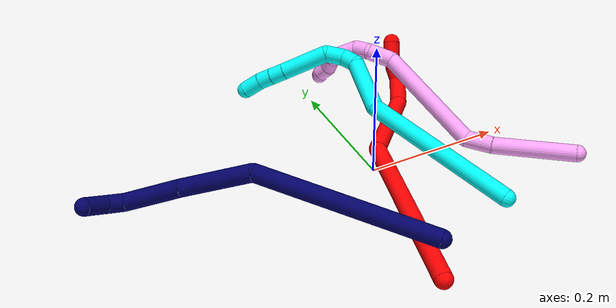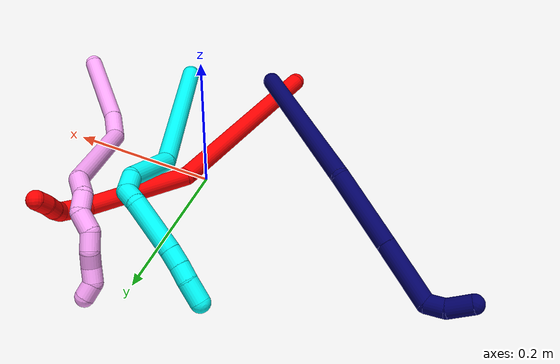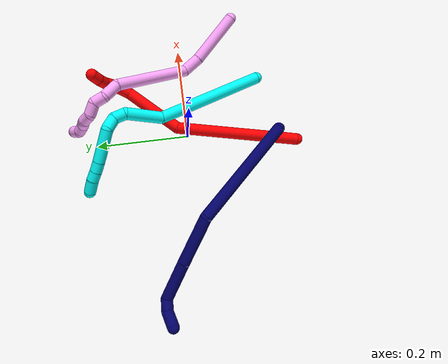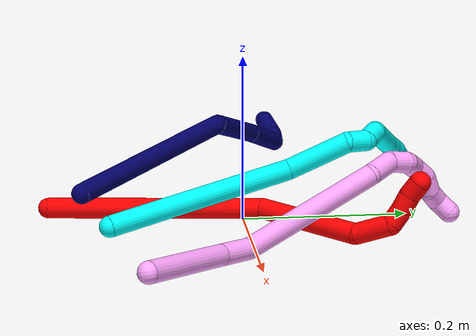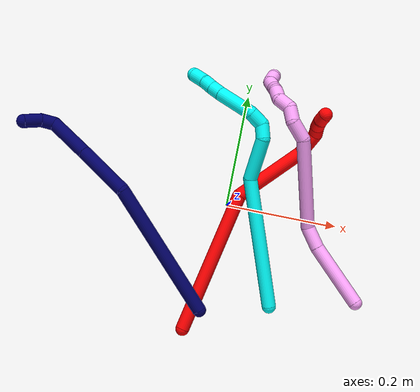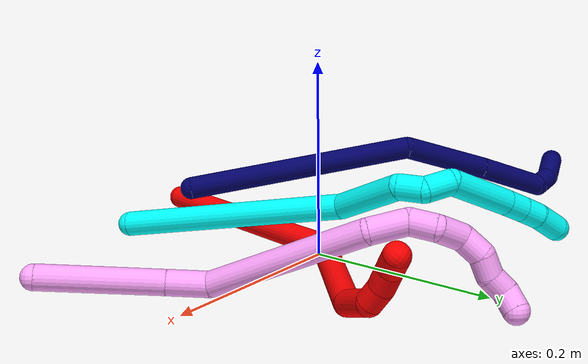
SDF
<sdf version="1.7">
 <world name="default">
  <model name="2">
   <static>0</static>
   <link name="2">
    <collision name="collision-cylinder-e_1_1_4">
     <pose>0.046557 0.091981 -0.079503 -2.28356 0.365711 -0.768346</pose>
     <geometry><cylinder><radius>0.0125</radius><length>0.260375</length></cylinder></geometry>
     <surface>
      <friction><ode><mu>1.16</mu><mu2>1.16</mu2><slip1>0</slip1><slip2>0</slip2></ode></friction>
      <contact><ode><kp>1e+06</kp><kd>1</kd><max_vel>0</max_vel><min_depth>0.001</min_depth></ode></contact>
     </surface>
    </collision>
    <visual name="visual-cylinder-e_1_1_4">
     <pose>0.046557 0.091981 -0.079503 -2.28356 0.365711 -0.768346</pose>
     <geometry><cylinder><radius>0.0125</radius><length>0.260375</length></cylinder></geometry>
     <material><ambient>1 0 0 1</ambient></material>
    </visual>
    <collision name="collision-cylinder-e_2_4_5">
     <pose>0.145352 0.222089 -0.177426 -2.02083 0.889639 -1.29933</pose>
     <geometry><cylinder><radius>0.0125</radius><length>0.134488</length></cylinder></geometry>
     <surface>
      <friction><ode><mu>1.16</mu><mu2>1.16</mu2><slip1>0</slip1><slip2>0</slip2></ode></friction>
      <contact><ode><kp>1e+06</kp><kd>1</kd><max_vel>0</max_vel><min_depth>0.001</min_depth></ode></contact>
     </surface>
    </collision>
    <visual name="visual-cylinder-e_2_4_5">
     <pose>0.145352 0.222089 -0.177426 -2.02083 0.889639 -1.29933</pose>
     <geometry><cylinder><radius>0.0125</radius><length>0.134488</length></cylinder></geometry>
     <material><ambient>1 0 0 1</ambient></material>
    </visual>
    <collision name="collision-cylinder-e_3_5_6">
     <pose>0.206717 0.280123 -0.200879 -1.81849 0.418287 -0.532276</pose>
     <geometry><cylinder><radius>0.0125</radius><length>0.044941</length></cylinder></geometry>
     <surface>
      <friction><ode><mu>1.16</mu><mu2>1.16</mu2><slip1>0</slip1><slip2>0</slip2></ode></friction>
      <contact><ode><kp>1e+06</kp><kd>1</kd><max_vel>0</max_vel><min_depth>0.001</min_depth></ode></contact>
     </surface>
    </collision>
    <visual name="visual-cylinder-e_3_5_6">
     <pose>0.206717 0.280123 -0.200879 -1.81849 0.418287 -0.532276</pose>
     <geometry><cylinder><radius>0.0125</radius><length>0.044941</length></cylinder></geometry>
     <material><ambient>1 0 0 1</ambient></material>
    </visual>
    <collision name="collision-cylinder-e_4_6_7">
     <pose>0.213217 0.309679 -0.205785 -1.55754 -0.265821 0.26236</pose>
     <geometry><cylinder><radius>0.0125</radius><length>0.020005</length></cylinder></geometry>
     <surface>
      <friction><ode><mu>1.16</mu><mu2>1.16</mu2><slip1>0</slip1><slip2>0</slip2></ode></friction>
      <contact><ode><kp>1e+06</kp><kd>1</kd><max_vel>0</max_vel><min_depth>0.001</min_depth></ode></contact>
     </surface>
    </collision>
    <visual name="visual-cylinder-e_4_6_7">
     <pose>0.213217 0.309679 -0.205785 -1.55754 -0.265821 0.26236</pose>
     <geometry><cylinder><radius>0.0125</radius><length>0.020005</length></cylinder></geometry>
     <material><ambient>1 0 0 1</ambient></material>
    </visual>
    <collision name="collision-cylinder-e_5_7_8">
     <pose>0.208462 0.328938 -0.203554 -1.35532 -0.213031 0.171675</pose>
     <geometry><cylinder><radius>0.0125</radius><length>0.020126</length></cylinder></geometry>
     <surface>
      <friction><ode><mu>1.16</mu><mu2>1.16</mu2><slip1>0</slip1><slip2>0</slip2></ode></friction>
      <contact><ode><kp>1e+06</kp><kd>1</kd><max_vel>0</max_vel><min_depth>0.001</min_depth></ode></contact>
     </surface>
    </collision>
    <visual name="visual-cylinder-e_5_7_8">
     <pose>0.208462 0.328938 -0.203554 -1.35532 -0.213031 0.171675</pose>
     <geometry><cylinder><radius>0.0125</radius><length>0.020126</length></cylinder></geometry>
     <material><ambient>1 0 0 1</ambient></material>
    </visual>
    <collision name="collision-cylinder-e_6_8_2">
     <pose>0.206489 0.348387 -0.199509 -1.37597 0.015394 -0.012653</pose>
     <geometry><cylinder><radius>0.0125</radius><length>0.020065</length></cylinder></geometry>
     <surface>
      <friction><ode><mu>1.16</mu><mu2>1.16</mu2><slip1>0</slip1><slip2>0</slip2></ode></friction>
      <contact><ode><kp>1e+06</kp><kd>1</kd><max_vel>0</max_vel><min_depth>0.001</min_depth></ode></contact>
     </surface>
    </collision>
    <visual name="visual-cylinder-e_6_8_2">
     <pose>0.206489 0.348387 -0.199509 -1.37597 0.015394 -0.012653</pose>
     <geometry><cylinder><radius>0.0125</radius><length>0.020065</length></cylinder></geometry>
     <material><ambient>1 0 0 1</ambient></material>
    </visual>
    <collision name="collision-sphere-2">
     <pose>0.206643 0.358229 -0.197567 0 -0 0</pose>
     <geometry><sphere><radius>0.0125</radius></sphere></geometry>
     <surface>
      <friction><ode><mu>1.16</mu><mu2>1.16</mu2><slip1>0</slip1><slip2>0</slip2></ode></friction>
      <contact><ode><kp>1e+06</kp><kd>1</kd><max_vel>0</max_vel><min_depth>0.001</min_depth></ode></contact>
     </surface>
    </collision>
    <visual name="visual-sphere-2">
     <pose>0.206643 0.358229 -0.197567 0 -0 0</pose>
     <geometry><sphere><radius>0.0125</radius></sphere></geometry>
     <material><ambient>1 0 0 1</ambient></material>
    </visual>
    <collision name="collision-sphere-4">
     <pose>0.093114 0.183962 -0.159007 0 -0 0</pose>
     <geometry><sphere><radius>0.0125</radius></sphere></geometry>
     <surface>
      <friction><ode><mu>1.16</mu><mu2>1.16</mu2><slip1>0</slip1><slip2>0</slip2></ode></friction>
      <contact><ode><kp>1e+06</kp><kd>1</kd><max_vel>0</max_vel><min_depth>0.001</min_depth></ode></contact>
     </surface>
    </collision>
    <visual name="visual-sphere-4">
     <pose>0.093114 0.183962 -0.159007 0 -0 0</pose>
     <geometry><sphere><radius>0.0125</radius></sphere></geometry>
     <material><ambient>1 0 0 1</ambient></material>
    </visual>
    <collision name="collision-sphere-1">
     <geometry><sphere><radius>0.0125</radius></sphere></geometry>
     <surface>
      <friction><ode><mu>1.16</mu><mu2>1.16</mu2><slip1>0</slip1><slip2>0</slip2></ode></friction>
      <contact><ode><kp>1e+06</kp><kd>1</kd><max_vel>0</max_vel><min_depth>0.001</min_depth></ode></contact>
     </surface>
    </collision>
    <visual name="visual-sphere-1">
     <geometry><sphere><radius>0.0125</radius></sphere></geometry>
     <material><ambient>1 0 0 1</ambient></material>
    </visual>
    <collision name="collision-sphere-8">
     <pose>0.206334 0.338546 -0.201451 0 -0 0</pose>
     <geometry><sphere><radius>0.0125</radius></sphere></geometry>
     <surface>
      <friction><ode><mu>1.16</mu><mu2>1.16</mu2><slip1>0</slip1><slip2>0</slip2></ode></friction>
      <contact><ode><kp>1e+06</kp><kd>1</kd><max_vel>0</max_vel><min_depth>0.001</min_depth></ode></contact>
     </surface>
    </collision>
    <visual name="visual-sphere-8">
     <pose>0.206334 0.338546 -0.201451 0 -0 0</pose>
     <geometry><sphere><radius>0.0125</radius></sphere></geometry>
     <material><ambient>1 0 0 1</ambient></material>
    </visual>
    <collision name="collision-sphere-5">
     <pose>0.19759 0.260216 -0.195845 0 -0 0</pose>
     <geometry><sphere><radius>0.0125</radius></sphere></geometry>
     <surface>
      <friction><ode><mu>1.16</mu><mu2>1.16</mu2><slip1>0</slip1><slip2>0</slip2></ode></friction>
      <contact><ode><kp>1e+06</kp><kd>1</kd><max_vel>0</max_vel><min_depth>0.001</min_depth></ode></contact>
     </surface>
    </collision>
    <visual name="visual-sphere-5">
     <pose>0.19759 0.260216 -0.195845 0 -0 0</pose>
     <geometry><sphere><radius>0.0125</radius></sphere></geometry>
     <material><ambient>1 0 0 1</ambient></material>
    </visual>
    <collision name="collision-sphere-6">
     <pose>0.215845 0.300029 -0.205913 0 -0 0</pose>
     <geometry><sphere><radius>0.0125</radius></sphere></geometry>
     <surface>
      <friction><ode><mu>1.16</mu><mu2>1.16</mu2><slip1>0</slip1><slip2>0</slip2></ode></friction>
      <contact><ode><kp>1e+06</kp><kd>1</kd><max_vel>0</max_vel><min_depth>0.001</min_depth></ode></contact>
     </surface>
    </collision>
    <visual name="visual-sphere-6">
     <pose>0.215845 0.300029 -0.205913 0 -0 0</pose>
     <geometry><sphere><radius>0.0125</radius></sphere></geometry>
     <material><ambient>1 0 0 1</ambient></material>
    </visual>
    <collision name="collision-sphere-7">
     <pose>0.210589 0.31933 -0.205657 0 -0 0</pose>
     <geometry><sphere><radius>0.0125</radius></sphere></geometry>
     <surface>
      <friction><ode><mu>1.16</mu><mu2>1.16</mu2><slip1>0</slip1><slip2>0</slip2></ode></friction>
      <contact><ode><kp>1e+06</kp><kd>1</kd><max_vel>0</max_vel><min_depth>0.001</min_depth></ode></contact>
     </surface>
    </collision>
    <visual name="visual-sphere-7">
     <pose>0.210589 0.31933 -0.205657 0 -0 0</pose>
     <geometry><sphere><radius>0.0125</radius></sphere></geometry>
     <material><ambient>1 0 0 1</ambient></material>
    </visual>
    <inertial>
     <pose>0.107129 0.172425 -0.131613 0 -0 0</pose>
     <mass>0.5</mass>
     <inertia>
      <ixx>-3.4e-05</ixx>
      <ixy>0</ixy>
      <ixz>0</ixz>
      <iyy>-0.001365</iyy>
      <iyz>0</iyz>
      <izz>-0.001887</izz>
     </inertia>
    </inertial>
   </link>
   <pose>-0.035132 -0.234064 0.011494 0.907414 0.403834 0.205644</pose>
  </model>
  <model name="3">
   <static>0</static>
   <link name="3">
    <collision name="collision-cylinder-e_1_1_4">
     <pose>0.023917 0.066223 0.091809 -0.624882 0.208216 -0.067477</pose>
     <geometry><cylinder><radius>0.0125</radius><length>0.231399</length></cylinder></geometry>
     <surface>
      <friction><ode><mu>1.16</mu><mu2>1.16</mu2><slip1>0</slip1><slip2>0</slip2></ode></friction>
      <contact><ode><kp>1e+06</kp><kd>1</kd><max_vel>0</max_vel><min_depth>0.001</min_depth></ode></contact>
     </surface>
    </collision>
    <visual name="visual-cylinder-e_1_1_4">
     <pose>0.023917 0.066223 0.091809 -0.624882 0.208216 -0.067477</pose>
     <geometry><cylinder><radius>0.0125</radius><length>0.231399</length></cylinder></geometry>
     <material><ambient>0.003922 1 0.996078 1</ambient></material>
    </visual>
    <collision name="collision-cylinder-e_2_4_5">
     <pose>0.071957 0.155408 0.203581 -0.85519 0.670352 -0.31484</pose>
     <geometry><cylinder><radius>0.0125</radius><length>0.077659</length></cylinder></geometry>
     <surface>
      <friction><ode><mu>1.16</mu><mu2>1.16</mu2><slip1>0</slip1><slip2>0</slip2></ode></friction>
      <contact><ode><kp>1e+06</kp><kd>1</kd><max_vel>0</max_vel><min_depth>0.001</min_depth></ode></contact>
     </surface>
    </collision>
    <visual name="visual-cylinder-e_2_4_5">
     <pose>0.071957 0.155408 0.203581 -0.85519 0.670352 -0.31484</pose>
     <geometry><cylinder><radius>0.0125</radius><length>0.077659</length></cylinder></geometry>
     <material><ambient>0.003922 1 0.996078 1</ambient></material>
    </visual>
    <collision name="collision-cylinder-e_3_5_6">
     <pose>0.097144 0.18712 0.232317 -0.783979 0.085647 -0.035423</pose>
     <geometry><cylinder><radius>0.0125</radius><length>0.024872</length></cylinder></geometry>
     <surface>
      <friction><ode><mu>1.16</mu><mu2>1.16</mu2><slip1>0</slip1><slip2>0</slip2></ode></friction>
      <contact><ode><kp>1e+06</kp><kd>1</kd><max_vel>0</max_vel><min_depth>0.001</min_depth></ode></contact>
     </surface>
    </collision>
    <visual name="visual-cylinder-e_3_5_6">
     <pose>0.097144 0.18712 0.232317 -0.783979 0.085647 -0.035423</pose>
     <geometry><cylinder><radius>0.0125</radius><length>0.024872</length></cylinder></geometry>
     <material><ambient>0.003922 1 0.996078 1</ambient></material>
    </visual>
    <collision name="collision-cylinder-e_4_6_7">
     <pose>0.096903 0.196833 0.25472 -0.070551 -0.095242 0.003364</pose>
     <geometry><cylinder><radius>0.0125</radius><length>0.02745</length></cylinder></geometry>
     <surface>
      <friction><ode><mu>1.16</mu><mu2>1.16</mu2><slip1>0</slip1><slip2>0</slip2></ode></friction>
      <contact><ode><kp>1e+06</kp><kd>1</kd><max_vel>0</max_vel><min_depth>0.001</min_depth></ode></contact>
     </surface>
    </collision>
    <visual name="visual-cylinder-e_4_6_7">
     <pose>0.096903 0.196833 0.25472 -0.070551 -0.095242 0.003364</pose>
     <geometry><cylinder><radius>0.0125</radius><length>0.02745</length></cylinder></geometry>
     <material><ambient>0.003922 1 0.996078 1</ambient></material>
    </visual>
    <collision name="collision-cylinder-e_5_7_8">
     <pose>0.073261 0.204582 0.293759 -0.260968 -0.704068 0.096336</pose>
     <geometry><cylinder><radius>0.0125</radius><length>0.069011</length></cylinder></geometry>
     <surface>
      <friction><ode><mu>1.16</mu><mu2>1.16</mu2><slip1>0</slip1><slip2>0</slip2></ode></friction>
      <contact><ode><kp>1e+06</kp><kd>1</kd><max_vel>0</max_vel><min_depth>0.001</min_depth></ode></contact>
     </surface>
    </collision>
    <visual name="visual-cylinder-e_5_7_8">
     <pose>0.073261 0.204582 0.293759 -0.260968 -0.704068 0.096336</pose>
     <geometry><cylinder><radius>0.0125</radius><length>0.069011</length></cylinder></geometry>
     <material><ambient>0.003922 1 0.996078 1</ambient></material>
    </visual>
    <collision name="collision-cylinder-e_6_8_9">
     <pose>0.044208 0.214103 0.326886 -0.340615 -0.687035 0.122875</pose>
     <geometry><cylinder><radius>0.0125</radius><length>0.021181</length></cylinder></geometry>
     <surface>
      <friction><ode><mu>1.16</mu><mu2>1.16</mu2><slip1>0</slip1><slip2>0</slip2></ode></friction>
      <contact><ode><kp>1e+06</kp><kd>1</kd><max_vel>0</max_vel><min_depth>0.001</min_depth></ode></contact>
     </surface>
    </collision>
    <visual name="visual-cylinder-e_6_8_9">
     <pose>0.044208 0.214103 0.326886 -0.340615 -0.687035 0.122875</pose>
     <geometry><cylinder><radius>0.0125</radius><length>0.021181</length></cylinder></geometry>
     <material><ambient>0.003922 1 0.996078 1</ambient></material>
    </visual>
    <collision name="collision-cylinder-e_7_9_10">
     <pose>0.031207 0.220047 0.34185 -0.416887 -0.670414 0.147098</pose>
     <geometry><cylinder><radius>0.0125</radius><length>0.020229</length></cylinder></geometry>
     <surface>
      <friction><ode><mu>1.16</mu><mu2>1.16</mu2><slip1>0</slip1><slip2>0</slip2></ode></friction>
      <contact><ode><kp>1e+06</kp><kd>1</kd><max_vel>0</max_vel><min_depth>0.001</min_depth></ode></contact>
     </surface>
    </collision>
    <visual name="visual-cylinder-e_7_9_10">
     <pose>0.031207 0.220047 0.34185 -0.416887 -0.670414 0.147098</pose>
     <geometry><cylinder><radius>0.0125</radius><length>0.020229</length></cylinder></geometry>
     <material><ambient>0.003922 1 0.996078 1</ambient></material>
    </visual>
    <collision name="collision-cylinder-e_8_10_2">
     <pose>0.014531 0.227186 0.357779 -0.424994 -0.828644 0.189202</pose>
     <geometry><cylinder><radius>0.0125</radius><length>0.028198</length></cylinder></geometry>
     <surface>
      <friction><ode><mu>1.16</mu><mu2>1.16</mu2><slip1>0</slip1><slip2>0</slip2></ode></friction>
      <contact><ode><kp>1e+06</kp><kd>1</kd><max_vel>0</max_vel><min_depth>0.001</min_depth></ode></contact>
     </surface>
    </collision>
    <visual name="visual-cylinder-e_8_10_2">
     <pose>0.014531 0.227186 0.357779 -0.424994 -0.828644 0.189202</pose>
     <geometry><cylinder><radius>0.0125</radius><length>0.028198</length></cylinder></geometry>
     <material><ambient>0.003922 1 0.996078 1</ambient></material>
    </visual>
    <collision name="collision-sphere-2">
     <pose>0.00414 0.231115 0.36646 0 -0 0</pose>
     <geometry><sphere><radius>0.0125</radius></sphere></geometry>
     <surface>
      <friction><ode><mu>1.16</mu><mu2>1.16</mu2><slip1>0</slip1><slip2>0</slip2></ode></friction>
      <contact><ode><kp>1e+06</kp><kd>1</kd><max_vel>0</max_vel><min_depth>0.001</min_depth></ode></contact>
     </surface>
    </collision>
    <visual name="visual-sphere-2">
     <pose>0.00414 0.231115 0.36646 0 -0 0</pose>
     <geometry><sphere><radius>0.0125</radius></sphere></geometry>
     <material><ambient>0.003922 1 0.996078 1</ambient></material>
    </visual>
    <collision name="collision-sphere-10">
     <pose>0.024922 0.223256 0.349097 0 -0 0</pose>
     <geometry><sphere><radius>0.0125</radius></sphere></geometry>
     <surface>
      <friction><ode><mu>1.16</mu><mu2>1.16</mu2><slip1>0</slip1><slip2>0</slip2></ode></friction>
      <contact><ode><kp>1e+06</kp><kd>1</kd><max_vel>0</max_vel><min_depth>0.001</min_depth></ode></contact>
     </surface>
    </collision>
    <visual name="visual-sphere-10">
     <pose>0.024922 0.223256 0.349097 0 -0 0</pose>
     <geometry><sphere><radius>0.0125</radius></sphere></geometry>
     <material><ambient>0.003922 1 0.996078 1</ambient></material>
    </visual>
    <collision name="collision-sphere-9">
     <pose>0.037491 0.216838 0.334603 0 -0 0</pose>
     <geometry><sphere><radius>0.0125</radius></sphere></geometry>
     <surface>
      <friction><ode><mu>1.16</mu><mu2>1.16</mu2><slip1>0</slip1><slip2>0</slip2></ode></friction>
      <contact><ode><kp>1e+06</kp><kd>1</kd><max_vel>0</max_vel><min_depth>0.001</min_depth></ode></contact>
     </surface>
    </collision>
    <visual name="visual-sphere-9">
     <pose>0.037491 0.216838 0.334603 0 -0 0</pose>
     <geometry><sphere><radius>0.0125</radius></sphere></geometry>
     <material><ambient>0.003922 1 0.996078 1</ambient></material>
    </visual>
    <collision name="collision-sphere-4">
     <pose>0.047834 0.132445 0.183619 0 -0 0</pose>
     <geometry><sphere><radius>0.0125</radius></sphere></geometry>
     <surface>
      <friction><ode><mu>1.16</mu><mu2>1.16</mu2><slip1>0</slip1><slip2>0</slip2></ode></friction>
      <contact><ode><kp>1e+06</kp><kd>1</kd><max_vel>0</max_vel><min_depth>0.001</min_depth></ode></contact>
     </surface>
    </collision>
    <visual name="visual-sphere-4">
     <pose>0.047834 0.132445 0.183619 0 -0 0</pose>
     <geometry><sphere><radius>0.0125</radius></sphere></geometry>
     <material><ambient>0.003922 1 0.996078 1</ambient></material>
    </visual>
    <collision name="collision-sphere-1">
     <geometry><sphere><radius>0.0125</radius></sphere></geometry>
     <surface>
      <friction><ode><mu>1.16</mu><mu2>1.16</mu2><slip1>0</slip1><slip2>0</slip2></ode></friction>
      <contact><ode><kp>1e+06</kp><kd>1</kd><max_vel>0</max_vel><min_depth>0.001</min_depth></ode></contact>
     </surface>
    </collision>
    <visual name="visual-sphere-1">
     <geometry><sphere><radius>0.0125</radius></sphere></geometry>
     <material><ambient>0.003922 1 0.996078 1</ambient></material>
    </visual>
    <collision name="collision-sphere-8">
     <pose>0.050925 0.211368 0.319169 0 -0 0</pose>
     <geometry><sphere><radius>0.0125</radius></sphere></geometry>
     <surface>
      <friction><ode><mu>1.16</mu><mu2>1.16</mu2><slip1>0</slip1><slip2>0</slip2></ode></friction>
      <contact><ode><kp>1e+06</kp><kd>1</kd><max_vel>0</max_vel><min_depth>0.001</min_depth></ode></contact>
     </surface>
    </collision>
    <visual name="visual-sphere-8">
     <pose>0.050925 0.211368 0.319169 0 -0 0</pose>
     <geometry><sphere><radius>0.0125</radius></sphere></geometry>
     <material><ambient>0.003922 1 0.996078 1</ambient></material>
    </visual>
    <collision name="collision-sphere-5">
     <pose>0.09608 0.178371 0.223543 0 -0 0</pose>
     <geometry><sphere><radius>0.0125</radius></sphere></geometry>
     <surface>
      <friction><ode><mu>1.16</mu><mu2>1.16</mu2><slip1>0</slip1><slip2>0</slip2></ode></friction>
      <contact><ode><kp>1e+06</kp><kd>1</kd><max_vel>0</max_vel><min_depth>0.001</min_depth></ode></contact>
     </surface>
    </collision>
    <visual name="visual-sphere-5">
     <pose>0.09608 0.178371 0.223543 0 -0 0</pose>
     <geometry><sphere><radius>0.0125</radius></sphere></geometry>
     <material><ambient>0.003922 1 0.996078 1</ambient></material>
    </visual>
    <collision name="collision-sphere-6">
     <pose>0.098208 0.195869 0.241091 0 -0 0</pose>
     <geometry><sphere><radius>0.0125</radius></sphere></geometry>
     <surface>
      <friction><ode><mu>1.16</mu><mu2>1.16</mu2><slip1>0</slip1><slip2>0</slip2></ode></friction>
      <contact><ode><kp>1e+06</kp><kd>1</kd><max_vel>0</max_vel><min_depth>0.001</min_depth></ode></contact>
     </surface>
    </collision>
    <visual name="visual-sphere-6">
     <pose>0.098208 0.195869 0.241091 0 -0 0</pose>
     <geometry><sphere><radius>0.0125</radius></sphere></geometry>
     <material><ambient>0.003922 1 0.996078 1</ambient></material>
    </visual>
    <collision name="collision-sphere-7">
     <pose>0.095598 0.197796 0.268349 0 -0 0</pose>
     <geometry><sphere><radius>0.0125</radius></sphere></geometry>
     <surface>
      <friction><ode><mu>1.16</mu><mu2>1.16</mu2><slip1>0</slip1><slip2>0</slip2></ode></friction>
      <contact><ode><kp>1e+06</kp><kd>1</kd><max_vel>0</max_vel><min_depth>0.001</min_depth></ode></contact>
     </surface>
    </collision>
    <visual name="visual-sphere-7">
     <pose>0.095598 0.197796 0.268349 0 -0 0</pose>
     <geometry><sphere><radius>0.0125</radius></sphere></geometry>
     <material><ambient>0.003922 1 0.996078 1</ambient></material>
    </visual>
    <inertial>
     <pose>0.046464 0.133922 0.188051 0 -0 0</pose>
     <mass>0.5</mass>
     <inertia>
      <ixx>0.001005</ixx>
      <ixy>0</ixy>
      <ixz>0</ixz>
      <iyy>0.000865</iyy>
      <iyz>0</iyz>
      <izz>-0.00082</izz>
     </inertia>
    </inertial>
   </link>
   <pose>0.107864 -0.163025 0.029554 -0.961775 -1.01994 0.474908</pose>
  </model>
  <model name="4">
   <static>0</static>
   <link name="4">
    <collision name="collision-cylinder-e_1_1_4">
     <pose>-0.054015 0.023887 -0.006722 -1.84512 -1.14016 1.40479</pose>
     <geometry><cylinder><radius>0.0125</radius><length>0.118885</length></cylinder></geometry>
     <surface>
      <friction><ode><mu>1.16</mu><mu2>1.16</mu2><slip1>0</slip1><slip2>0</slip2></ode></friction>
      <contact><ode><kp>1e+06</kp><kd>1</kd><max_vel>0</max_vel><min_depth>0.001</min_depth></ode></contact>
     </surface>
    </collision>
    <visual name="visual-cylinder-e_1_1_4">
     <pose>-0.054015 0.023887 -0.006722 -1.84512 -1.14016 1.40479</pose>
     <geometry><cylinder><radius>0.0125</radius><length>0.118885</length></cylinder></geometry>
     <material><ambient>1 0.65098 0.996078 1</ambient></material>
    </visual>
    <collision name="collision-cylinder-e_2_4_5">
     <pose>-0.124976 0.059071 -0.015136 -1.71944 -0.977642 1.1063</pose>
     <geometry><cylinder><radius>0.0125</radius><length>0.040872</length></cylinder></geometry>
     <surface>
      <friction><ode><mu>1.16</mu><mu2>1.16</mu2><slip1>0</slip1><slip2>0</slip2></ode></friction>
      <contact><ode><kp>1e+06</kp><kd>1</kd><max_vel>0</max_vel><min_depth>0.001</min_depth></ode></contact>
     </surface>
    </collision>
    <visual name="visual-cylinder-e_2_4_5">
     <pose>-0.124976 0.059071 -0.015136 -1.71944 -0.977642 1.1063</pose>
     <geometry><cylinder><radius>0.0125</radius><length>0.040872</length></cylinder></geometry>
     <material><ambient>1 0.65098 0.996078 1</ambient></material>
    </visual>
    <collision name="collision-cylinder-e_3_5_6">
     <pose>-0.185975 0.136481 0.009953 -1.18592 -0.553255 0.378053</pose>
     <geometry><cylinder><radius>0.0125</radius><length>0.167676</length></cylinder></geometry>
     <surface>
      <friction><ode><mu>1.16</mu><mu2>1.16</mu2><slip1>0</slip1><slip2>0</slip2></ode></friction>
      <contact><ode><kp>1e+06</kp><kd>1</kd><max_vel>0</max_vel><min_depth>0.001</min_depth></ode></contact>
     </surface>
    </collision>
    <visual name="visual-cylinder-e_3_5_6">
     <pose>-0.185975 0.136481 0.009953 -1.18592 -0.553255 0.378053</pose>
     <geometry><cylinder><radius>0.0125</radius><length>0.167676</length></cylinder></geometry>
     <material><ambient>1 0.65098 0.996078 1</ambient></material>
    </visual>
    <collision name="collision-cylinder-e_4_6_7">
     <pose>-0.245867 0.211278 0.040241 -1.18701 -1.03676 0.734721</pose>
     <geometry><cylinder><radius>0.0125</radius><length>0.036801</length></cylinder></geometry>
     <surface>
      <friction><ode><mu>1.16</mu><mu2>1.16</mu2><slip1>0</slip1><slip2>0</slip2></ode></friction>
      <contact><ode><kp>1e+06</kp><kd>1</kd><max_vel>0</max_vel><min_depth>0.001</min_depth></ode></contact>
     </surface>
    </collision>
    <visual name="visual-cylinder-e_4_6_7">
     <pose>-0.245867 0.211278 0.040241 -1.18701 -1.03676 0.734721</pose>
     <geometry><cylinder><radius>0.0125</radius><length>0.036801</length></cylinder></geometry>
     <material><ambient>1 0.65098 0.996078 1</ambient></material>
    </visual>
    <collision name="collision-cylinder-e_5_7_8">
     <pose>-0.27031 0.228743 0.040735 -1.90129 -0.747493 1.0044</pose>
     <geometry><cylinder><radius>0.0125</radius><length>0.025316</length></cylinder></geometry>
     <surface>
      <friction><ode><mu>1.16</mu><mu2>1.16</mu2><slip1>0</slip1><slip2>0</slip2></ode></friction>
      <contact><ode><kp>1e+06</kp><kd>1</kd><max_vel>0</max_vel><min_depth>0.001</min_depth></ode></contact>
     </surface>
    </collision>
    <visual name="visual-cylinder-e_5_7_8">
     <pose>-0.27031 0.228743 0.040735 -1.90129 -0.747493 1.0044</pose>
     <geometry><cylinder><radius>0.0125</radius><length>0.025316</length></cylinder></geometry>
     <material><ambient>1 0.65098 0.996078 1</ambient></material>
    </visual>
    <collision name="collision-cylinder-e_6_8_9">
     <pose>-0.29127 0.239008 0.032432 -2.86815 -1.15235 2.72425</pose>
     <geometry><cylinder><radius>0.0125</radius><length>0.027044</length></cylinder></geometry>
     <surface>
      <friction><ode><mu>1.16</mu><mu2>1.16</mu2><slip1>0</slip1><slip2>0</slip2></ode></friction>
      <contact><ode><kp>1e+06</kp><kd>1</kd><max_vel>0</max_vel><min_depth>0.001</min_depth></ode></contact>
     </surface>
    </collision>
    <visual name="visual-cylinder-e_6_8_9">
     <pose>-0.29127 0.239008 0.032432 -2.86815 -1.15235 2.72425</pose>
     <geometry><cylinder><radius>0.0125</radius><length>0.027044</length></cylinder></geometry>
     <material><ambient>1 0.65098 0.996078 1</ambient></material>
    </visual>
    <collision name="collision-cylinder-e_7_9_10">
     <pose>-0.310185 0.245521 0.019073 -2.58428 -0.603962 1.65579</pose>
     <geometry><cylinder><radius>0.0125</radius><length>0.023102</length></cylinder></geometry>
     <surface>
      <friction><ode><mu>1.16</mu><mu2>1.16</mu2><slip1>0</slip1><slip2>0</slip2></ode></friction>
      <contact><ode><kp>1e+06</kp><kd>1</kd><max_vel>0</max_vel><min_depth>0.001</min_depth></ode></contact>
     </surface>
    </collision>
    <visual name="visual-cylinder-e_7_9_10">
     <pose>-0.310185 0.245521 0.019073 -2.58428 -0.603962 1.65579</pose>
     <geometry><cylinder><radius>0.0125</radius><length>0.023102</length></cylinder></geometry>
     <material><ambient>1 0.65098 0.996078 1</ambient></material>
    </visual>
    <collision name="collision-cylinder-e_8_10_11">
     <pose>-0.319938 0.251584 0.001519 -3.03289 -0.322925 2.49688</pose>
     <geometry><cylinder><radius>0.0125</radius><length>0.020123</length></cylinder></geometry>
     <surface>
      <friction><ode><mu>1.16</mu><mu2>1.16</mu2><slip1>0</slip1><slip2>0</slip2></ode></friction>
      <contact><ode><kp>1e+06</kp><kd>1</kd><max_vel>0</max_vel><min_depth>0.001</min_depth></ode></contact>
     </surface>
    </collision>
    <visual name="visual-cylinder-e_8_10_11">
     <pose>-0.319938 0.251584 0.001519 -3.03289 -0.322925 2.49688</pose>
     <geometry><cylinder><radius>0.0125</radius><length>0.020123</length></cylinder></geometry>
     <material><ambient>1 0.65098 0.996078 1</ambient></material>
    </visual>
    <collision name="collision-cylinder-e_9_11_12">
     <pose>-0.329365 0.255454 -0.015297 -2.7726 -0.670549 2.15815</pose>
     <geometry><cylinder><radius>0.0125</radius><length>0.020063</length></cylinder></geometry>
     <surface>
      <friction><ode><mu>1.16</mu><mu2>1.16</mu2><slip1>0</slip1><slip2>0</slip2></ode></friction>
      <contact><ode><kp>1e+06</kp><kd>1</kd><max_vel>0</max_vel><min_depth>0.001</min_depth></ode></contact>
     </surface>
    </collision>
    <visual name="visual-cylinder-e_9_11_12">
     <pose>-0.329365 0.255454 -0.015297 -2.7726 -0.670549 2.15815</pose>
     <geometry><cylinder><radius>0.0125</radius><length>0.020063</length></cylinder></geometry>
     <material><ambient>1 0.65098 0.996078 1</ambient></material>
    </visual>
    <collision name="collision-cylinder-e_10_12_2">
     <pose>-0.33605 0.264627 -0.030426 -2.45913 -0.044838 0.126115</pose>
     <geometry><cylinder><radius>0.0125</radius><length>0.020117</length></cylinder></geometry>
     <surface>
      <friction><ode><mu>1.16</mu><mu2>1.16</mu2><slip1>0</slip1><slip2>0</slip2></ode></friction>
      <contact><ode><kp>1e+06</kp><kd>1</kd><max_vel>0</max_vel><min_depth>0.001</min_depth></ode></contact>
     </surface>
    </collision>
    <visual name="visual-cylinder-e_10_12_2">
     <pose>-0.33605 0.264627 -0.030426 -2.45913 -0.044838 0.126115</pose>
     <geometry><cylinder><radius>0.0125</radius><length>0.020117</length></cylinder></geometry>
     <material><ambient>1 0.65098 0.996078 1</ambient></material>
    </visual>
    <collision name="collision-sphere-2">
     <pose>-0.336501 0.270964 -0.038223 0 -0 0</pose>
     <geometry><sphere><radius>0.0125</radius></sphere></geometry>
     <surface>
      <friction><ode><mu>1.16</mu><mu2>1.16</mu2><slip1>0</slip1><slip2>0</slip2></ode></friction>
      <contact><ode><kp>1e+06</kp><kd>1</kd><max_vel>0</max_vel><min_depth>0.001</min_depth></ode></contact>
     </surface>
    </collision>
    <visual name="visual-sphere-2">
     <pose>-0.336501 0.270964 -0.038223 0 -0 0</pose>
     <geometry><sphere><radius>0.0125</radius></sphere></geometry>
     <material><ambient>1 0.65098 0.996078 1</ambient></material>
    </visual>
    <collision name="collision-sphere-12">
     <pose>-0.335599 0.258289 -0.022628 0 -0 0</pose>
     <geometry><sphere><radius>0.0125</radius></sphere></geometry>
     <surface>
      <friction><ode><mu>1.16</mu><mu2>1.16</mu2><slip1>0</slip1><slip2>0</slip2></ode></friction>
      <contact><ode><kp>1e+06</kp><kd>1</kd><max_vel>0</max_vel><min_depth>0.001</min_depth></ode></contact>
     </surface>
    </collision>
    <visual name="visual-sphere-12">
     <pose>-0.335599 0.258289 -0.022628 0 -0 0</pose>
     <geometry><sphere><radius>0.0125</radius></sphere></geometry>
     <material><ambient>1 0.65098 0.996078 1</ambient></material>
    </visual>
    <collision name="collision-sphere-11">
     <pose>-0.323131 0.25262 -0.007967 0 -0 0</pose>
     <geometry><sphere><radius>0.0125</radius></sphere></geometry>
     <surface>
      <friction><ode><mu>1.16</mu><mu2>1.16</mu2><slip1>0</slip1><slip2>0</slip2></ode></friction>
      <contact><ode><kp>1e+06</kp><kd>1</kd><max_vel>0</max_vel><min_depth>0.001</min_depth></ode></contact>
     </surface>
    </collision>
    <visual name="visual-sphere-11">
     <pose>-0.323131 0.25262 -0.007967 0 -0 0</pose>
     <geometry><sphere><radius>0.0125</radius></sphere></geometry>
     <material><ambient>1 0.65098 0.996078 1</ambient></material>
    </visual>
    <collision name="collision-sphere-10">
     <pose>-0.316745 0.250549 0.011004 0 -0 0</pose>
     <geometry><sphere><radius>0.0125</radius></sphere></geometry>
     <surface>
      <friction><ode><mu>1.16</mu><mu2>1.16</mu2><slip1>0</slip1><slip2>0</slip2></ode></friction>
      <contact><ode><kp>1e+06</kp><kd>1</kd><max_vel>0</max_vel><min_depth>0.001</min_depth></ode></contact>
     </surface>
    </collision>
    <visual name="visual-sphere-10">
     <pose>-0.316745 0.250549 0.011004 0 -0 0</pose>
     <geometry><sphere><radius>0.0125</radius></sphere></geometry>
     <material><ambient>1 0.65098 0.996078 1</ambient></material>
    </visual>
    <collision name="collision-sphere-9">
     <pose>-0.303625 0.240492 0.027142 0 -0 0</pose>
     <geometry><sphere><radius>0.0125</radius></sphere></geometry>
     <surface>
      <friction><ode><mu>1.16</mu><mu2>1.16</mu2><slip1>0</slip1><slip2>0</slip2></ode></friction>
      <contact><ode><kp>1e+06</kp><kd>1</kd><max_vel>0</max_vel><min_depth>0.001</min_depth></ode></contact>
     </surface>
    </collision>
    <visual name="visual-sphere-9">
     <pose>-0.303625 0.240492 0.027142 0 -0 0</pose>
     <geometry><sphere><radius>0.0125</radius></sphere></geometry>
     <material><ambient>1 0.65098 0.996078 1</ambient></material>
    </visual>
    <collision name="collision-sphere-4">
     <pose>-0.108031 0.047773 -0.013444 0 -0 0</pose>
     <geometry><sphere><radius>0.0125</radius></sphere></geometry>
     <surface>
      <friction><ode><mu>1.16</mu><mu2>1.16</mu2><slip1>0</slip1><slip2>0</slip2></ode></friction>
      <contact><ode><kp>1e+06</kp><kd>1</kd><max_vel>0</max_vel><min_depth>0.001</min_depth></ode></contact>
     </surface>
    </collision>
    <visual name="visual-sphere-4">
     <pose>-0.108031 0.047773 -0.013444 0 -0 0</pose>
     <geometry><sphere><radius>0.0125</radius></sphere></geometry>
     <material><ambient>1 0.65098 0.996078 1</ambient></material>
    </visual>
    <collision name="collision-sphere-1">
     <geometry><sphere><radius>0.0125</radius></sphere></geometry>
     <surface>
      <friction><ode><mu>1.16</mu><mu2>1.16</mu2><slip1>0</slip1><slip2>0</slip2></ode></friction>
      <contact><ode><kp>1e+06</kp><kd>1</kd><max_vel>0</max_vel><min_depth>0.001</min_depth></ode></contact>
     </surface>
    </collision>
    <visual name="visual-sphere-1">
     <geometry><sphere><radius>0.0125</radius></sphere></geometry>
     <material><ambient>1 0.65098 0.996078 1</ambient></material>
    </visual>
    <collision name="collision-sphere-8">
     <pose>-0.278915 0.237524 0.037723 0 -0 0</pose>
     <geometry><sphere><radius>0.0125</radius></sphere></geometry>
     <surface>
      <friction><ode><mu>1.16</mu><mu2>1.16</mu2><slip1>0</slip1><slip2>0</slip2></ode></friction>
      <contact><ode><kp>1e+06</kp><kd>1</kd><max_vel>0</max_vel><min_depth>0.001</min_depth></ode></contact>
     </surface>
    </collision>
    <visual name="visual-sphere-8">
     <pose>-0.278915 0.237524 0.037723 0 -0 0</pose>
     <geometry><sphere><radius>0.0125</radius></sphere></geometry>
     <material><ambient>1 0.65098 0.996078 1</ambient></material>
    </visual>
    <collision name="collision-sphere-5">
     <pose>-0.141921 0.070368 -0.016828 0 -0 0</pose>
     <geometry><sphere><radius>0.0125</radius></sphere></geometry>
     <surface>
      <friction><ode><mu>1.16</mu><mu2>1.16</mu2><slip1>0</slip1><slip2>0</slip2></ode></friction>
      <contact><ode><kp>1e+06</kp><kd>1</kd><max_vel>0</max_vel><min_depth>0.001</min_depth></ode></contact>
     </surface>
    </collision>
    <visual name="visual-sphere-5">
     <pose>-0.141921 0.070368 -0.016828 0 -0 0</pose>
     <geometry><sphere><radius>0.0125</radius></sphere></geometry>
     <material><ambient>1 0.65098 0.996078 1</ambient></material>
    </visual>
    <collision name="collision-sphere-6">
     <pose>-0.230028 0.202593 0.036734 0 -0 0</pose>
     <geometry><sphere><radius>0.0125</radius></sphere></geometry>
     <surface>
      <friction><ode><mu>1.16</mu><mu2>1.16</mu2><slip1>0</slip1><slip2>0</slip2></ode></friction>
      <contact><ode><kp>1e+06</kp><kd>1</kd><max_vel>0</max_vel><min_depth>0.001</min_depth></ode></contact>
     </surface>
    </collision>
    <visual name="visual-sphere-6">
     <pose>-0.230028 0.202593 0.036734 0 -0 0</pose>
     <geometry><sphere><radius>0.0125</radius></sphere></geometry>
     <material><ambient>1 0.65098 0.996078 1</ambient></material>
    </visual>
    <collision name="collision-sphere-7">
     <pose>-0.261705 0.219963 0.043748 0 -0 0</pose>
     <geometry><sphere><radius>0.0125</radius></sphere></geometry>
     <surface>
      <friction><ode><mu>1.16</mu><mu2>1.16</mu2><slip1>0</slip1><slip2>0</slip2></ode></friction>
      <contact><ode><kp>1e+06</kp><kd>1</kd><max_vel>0</max_vel><min_depth>0.001</min_depth></ode></contact>
     </surface>
    </collision>
    <visual name="visual-sphere-7">
     <pose>-0.261705 0.219963 0.043748 0 -0 0</pose>
     <geometry><sphere><radius>0.0125</radius></sphere></geometry>
     <material><ambient>1 0.65098 0.996078 1</ambient></material>
    </visual>
    <inertial>
     <pose>-0.186908 0.138704 0.006385 0 -0 0</pose>
     <mass>0.5</mass>
     <inertia>
      <ixx>0.000499</ixx>
      <ixy>0</ixy>
      <ixz>0</ixz>
      <iyy>0.000561</iyy>
      <iyz>0</iyz>
      <izz>-2.8e-05</izz>
     </inertia>
    </inertial>
   </link>
   <pose>0.258096 -0.127142 0.025 0.162973 -0.058693 -0.353863</pose>
  </model>
  <model name="7">
   <static>0</static>
   <link name="7">
    <collision name="collision-cylinder-e_1_1_4">
     <pose>-0.071429 0.080724 0.066425 -0.882267 -0.59941 0.289766</pose>
     <geometry><cylinder><radius>0.0125</radius><length>0.253225</length></cylinder></geometry>
     <surface>
      <friction><ode><mu>1.16</mu><mu2>1.16</mu2><slip1>0</slip1><slip2>0</slip2></ode></friction>
      <contact><ode><kp>1e+06</kp><kd>1</kd><max_vel>0</max_vel><min_depth>0.001</min_depth></ode></contact>
     </surface>
    </collision>
    <visual name="visual-cylinder-e_1_1_4">
     <pose>-0.071429 0.080724 0.066425 -0.882267 -0.59941 0.289766</pose>
     <geometry><cylinder><radius>0.0125</radius><length>0.253225</length></cylinder></geometry>
     <material><ambient>0.003922 0 0.403922 1</ambient></material>
    </visual>
    <collision name="collision-cylinder-e_2_4_5">
     <pose>-0.146265 0.203509 0.16287 -0.950929 -0.065834 0.033904</pose>
     <geometry><cylinder><radius>0.0125</radius><length>0.103575</length></cylinder></geometry>
     <surface>
      <friction><ode><mu>1.16</mu><mu2>1.16</mu2><slip1>0</slip1><slip2>0</slip2></ode></friction>
      <contact><ode><kp>1e+06</kp><kd>1</kd><max_vel>0</max_vel><min_depth>0.001</min_depth></ode></contact>
     </surface>
    </collision>
    <visual name="visual-cylinder-e_2_4_5">
     <pose>-0.146265 0.203509 0.16287 -0.950929 -0.065834 0.033904</pose>
     <geometry><cylinder><radius>0.0125</radius><length>0.103575</length></cylinder></geometry>
     <material><ambient>0.003922 0 0.403922 1</ambient></material>
    </visual>
    <collision name="collision-cylinder-e_3_5_6">
     <pose>-0.150813 0.280076 0.217492 -0.951398 -0.026921 0.013869</pose>
     <geometry><cylinder><radius>0.0125</radius><length>0.084786</length></cylinder></geometry>
     <surface>
      <friction><ode><mu>1.16</mu><mu2>1.16</mu2><slip1>0</slip1><slip2>0</slip2></ode></friction>
      <contact><ode><kp>1e+06</kp><kd>1</kd><max_vel>0</max_vel><min_depth>0.001</min_depth></ode></contact>
     </surface>
    </collision>
    <visual name="visual-cylinder-e_3_5_6">
     <pose>-0.150813 0.280076 0.217492 -0.951398 -0.026921 0.013869</pose>
     <geometry><cylinder><radius>0.0125</radius><length>0.084786</length></cylinder></geometry>
     <material><ambient>0.003922 0 0.403922 1</ambient></material>
    </visual>
    <collision name="collision-cylinder-e_4_6_7">
     <pose>-0.155829 0.326309 0.24095 -1.66797 -0.317705 0.349552</pose>
     <geometry><cylinder><radius>0.0125</radius><length>0.024809</length></cylinder></geometry>
     <surface>
      <friction><ode><mu>1.16</mu><mu2>1.16</mu2><slip1>0</slip1><slip2>0</slip2></ode></friction>
      <contact><ode><kp>1e+06</kp><kd>1</kd><max_vel>0</max_vel><min_depth>0.001</min_depth></ode></contact>
     </surface>
    </collision>
    <visual name="visual-cylinder-e_4_6_7">
     <pose>-0.155829 0.326309 0.24095 -1.66797 -0.317705 0.349552</pose>
     <geometry><cylinder><radius>0.0125</radius><length>0.024809</length></cylinder></geometry>
     <material><ambient>0.003922 0 0.403922 1</ambient></material>
    </visual>
    <collision name="collision-cylinder-e_5_7_2">
     <pose>-0.165495 0.351638 0.231819 -2.10186 -0.351825 0.602204</pose>
     <geometry><cylinder><radius>0.0125</radius><length>0.033604</length></cylinder></geometry>
     <surface>
      <friction><ode><mu>1.16</mu><mu2>1.16</mu2><slip1>0</slip1><slip2>0</slip2></ode></friction>
      <contact><ode><kp>1e+06</kp><kd>1</kd><max_vel>0</max_vel><min_depth>0.001</min_depth></ode></contact>
     </surface>
    </collision>
    <visual name="visual-cylinder-e_5_7_2">
     <pose>-0.165495 0.351638 0.231819 -2.10186 -0.351825 0.602204</pose>
     <geometry><cylinder><radius>0.0125</radius><length>0.033604</length></cylinder></geometry>
     <material><ambient>0.003922 0 0.403922 1</ambient></material>
    </visual>
    <collision name="collision-sphere-2">
     <pose>-0.171285 0.365238 0.223831 0 -0 0</pose>
     <geometry><sphere><radius>0.0125</radius></sphere></geometry>
     <surface>
      <friction><ode><mu>1.16</mu><mu2>1.16</mu2><slip1>0</slip1><slip2>0</slip2></ode></friction>
      <contact><ode><kp>1e+06</kp><kd>1</kd><max_vel>0</max_vel><min_depth>0.001</min_depth></ode></contact>
     </surface>
    </collision>
    <visual name="visual-sphere-2">
     <pose>-0.171285 0.365238 0.223831 0 -0 0</pose>
     <geometry><sphere><radius>0.0125</radius></sphere></geometry>
     <material><ambient>0.003922 0 0.403922 1</ambient></material>
    </visual>
    <collision name="collision-sphere-7">
     <pose>-0.159704 0.338037 0.239807 0 -0 0</pose>
     <geometry><sphere><radius>0.0125</radius></sphere></geometry>
     <surface>
      <friction><ode><mu>1.16</mu><mu2>1.16</mu2><slip1>0</slip1><slip2>0</slip2></ode></friction>
      <contact><ode><kp>1e+06</kp><kd>1</kd><max_vel>0</max_vel><min_depth>0.001</min_depth></ode></contact>
     </surface>
    </collision>
    <visual name="visual-sphere-7">
     <pose>-0.159704 0.338037 0.239807 0 -0 0</pose>
     <geometry><sphere><radius>0.0125</radius></sphere></geometry>
     <material><ambient>0.003922 0 0.403922 1</ambient></material>
    </visual>
    <collision name="collision-sphere-6">
     <pose>-0.151954 0.314581 0.242094 0 -0 0</pose>
     <geometry><sphere><radius>0.0125</radius></sphere></geometry>
     <surface>
      <friction><ode><mu>1.16</mu><mu2>1.16</mu2><slip1>0</slip1><slip2>0</slip2></ode></friction>
      <contact><ode><kp>1e+06</kp><kd>1</kd><max_vel>0</max_vel><min_depth>0.001</min_depth></ode></contact>
     </surface>
    </collision>
    <visual name="visual-sphere-6">
     <pose>-0.151954 0.314581 0.242094 0 -0 0</pose>
     <geometry><sphere><radius>0.0125</radius></sphere></geometry>
     <material><ambient>0.003922 0 0.403922 1</ambient></material>
    </visual>
    <collision name="collision-sphere-5">
     <pose>-0.149672 0.245571 0.192889 0 -0 0</pose>
     <geometry><sphere><radius>0.0125</radius></sphere></geometry>
     <surface>
      <friction><ode><mu>1.16</mu><mu2>1.16</mu2><slip1>0</slip1><slip2>0</slip2></ode></friction>
      <contact><ode><kp>1e+06</kp><kd>1</kd><max_vel>0</max_vel><min_depth>0.001</min_depth></ode></contact>
     </surface>
    </collision>
    <visual name="visual-sphere-5">
     <pose>-0.149672 0.245571 0.192889 0 -0 0</pose>
     <geometry><sphere><radius>0.0125</radius></sphere></geometry>
     <material><ambient>0.003922 0 0.403922 1</ambient></material>
    </visual>
    <collision name="collision-sphere-1">
     <geometry><sphere><radius>0.0125</radius></sphere></geometry>
     <surface>
      <friction><ode><mu>1.16</mu><mu2>1.16</mu2><slip1>0</slip1><slip2>0</slip2></ode></friction>
      <contact><ode><kp>1e+06</kp><kd>1</kd><max_vel>0</max_vel><min_depth>0.001</min_depth></ode></contact>
     </surface>
    </collision>
    <visual name="visual-sphere-1">
     <geometry><sphere><radius>0.0125</radius></sphere></geometry>
     <material><ambient>0.003922 0 0.403922 1</ambient></material>
    </visual>
    <collision name="collision-sphere-4">
     <pose>-0.142858 0.161448 0.13285 0 -0 0</pose>
     <geometry><sphere><radius>0.0125</radius></sphere></geometry>
     <surface>
      <friction><ode><mu>1.16</mu><mu2>1.16</mu2><slip1>0</slip1><slip2>0</slip2></ode></friction>
      <contact><ode><kp>1e+06</kp><kd>1</kd><max_vel>0</max_vel><min_depth>0.001</min_depth></ode></contact>
     </surface>
    </collision>
    <visual name="visual-sphere-4">
     <pose>-0.142858 0.161448 0.13285 0 -0 0</pose>
     <geometry><sphere><radius>0.0125</radius></sphere></geometry>
     <material><ambient>0.003922 0 0.403922 1</ambient></material>
    </visual>
    <inertial>
     <pose>-0.110903 0.170357 0.131796 0 -0 0</pose>
     <mass>0.5</mass>
     <inertia>
      <ixx>0.00155</ixx>
      <ixy>0</ixy>
      <ixz>0</ixz>
      <iyy>0.001443</iyy>
      <iyz>0</iyz>
      <izz>-0.000201</izz>
     </inertia>
    </inertial>
   </link>
   <pose>-0.012629 -0.193608 0.034553 -2.89926 1.04916 -1.33139</pose>
  </model>
 </world>
</sdf>
